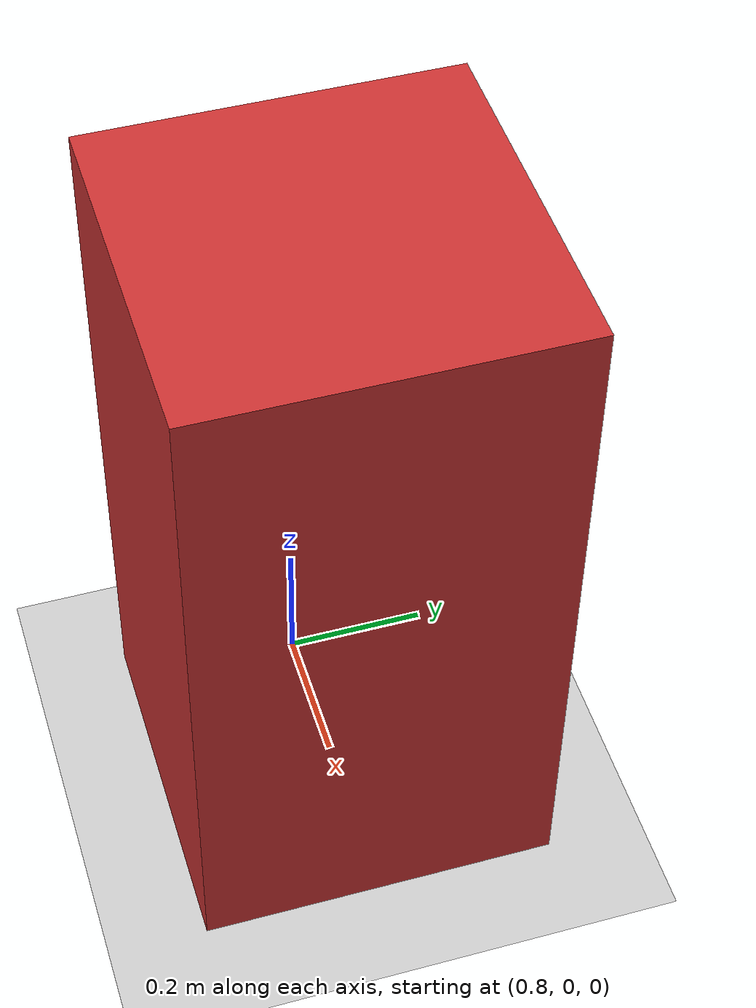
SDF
<?xml version="1.0" ?>
<sdf version="1.9">
    <world name="empty">
        <physics name="1ms" type="ignored">
            <max_step_size>0.001</max_step_size>
            <real_time_factor>1.0</real_time_factor>
        </physics>

        <plugin filename="gz-sim-physics-system" name="gz::sim::systems::Physics"/>
        <plugin filename="gz-sim-sensors-system" name="gz::sim::systems::Sensors">
            <render_engine>ogre</render_engine>
        </plugin>
        <plugin filename="gz-sim-scene-broadcaster-system" name="gz::sim::systems::SceneBroadcaster"/>
        <plugin filename="gz-sim-user-commands-system" name="gz::sim::systems::UserCommands"/>

        <light type="directional" name="sun">
            <cast_shadows>true</cast_shadows>
            <pose>0 0 10 0 0 0</pose>
            <diffuse>0.8 0.8 0.8 1</diffuse>
            <specular>0.2 0.2 0.2 1</specular>
            <direction>-0.5 0.1 -0.9</direction>
        </light>

        <model name="ground_plane">
            <static>true</static>
            <link name="link">
                <collision name="collision">
                    <geometry>
                        <plane>
                            <normal>0 0 1</normal>
                        </plane>
                    </geometry>
                </collision>
                <visual name="visual">
                    <geometry>
                        <plane>
                            <normal>0 0 1</normal>
                            <size>100 100</size>
                        </plane>
                    </geometry>
                    <material>
                        <ambient>0.8 0.8 0.8 1</ambient>
                        <diffuse>0.8 0.8 0.8 1</diffuse>
                    </material>
                </visual>
            </link>
        </model>

        <model name="box_obstacle">
        <static>true</static>
        <pose>1 0 0.5 0 0 0</pose>
        <link name="link">
            <collision name="collision">
                <geometry>
                    <box><size>0.5 0.5 1.0</size></box>
                </geometry>
            </collision>
            <visual name="visual">
                <geometry>
                    <box><size>0.5 0.5 1.0</size></box>
                </geometry>
                <material>
                    <ambient>0.8 0.2 0.2 1</ambient>
                    <diffuse>0.8 0.2 0.2 1</diffuse>
                </material>
            </visual>
        </link>
    </model>

    </world>
</sdf>
